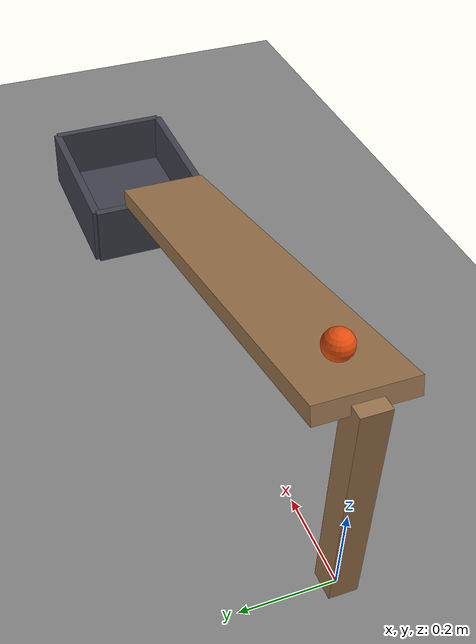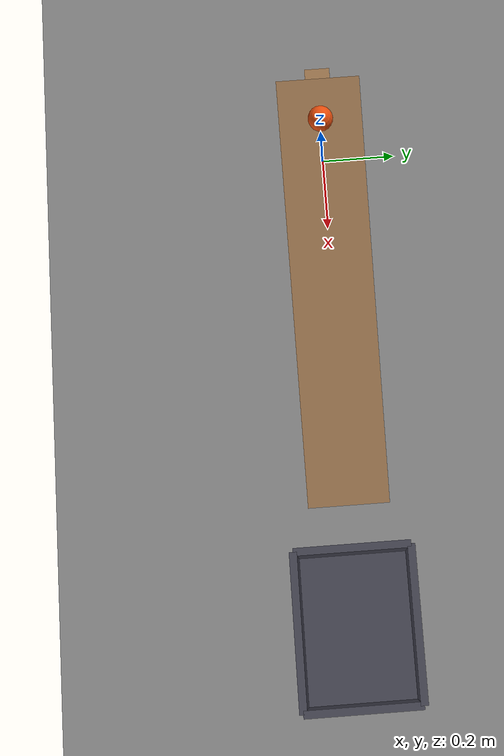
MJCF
<mujoco model="ball_rolls_down_a_ramp_into_a_cup">
  <compiler angle="radian"/>
  <option timestep="0.002"/>
  <worldbody>
    <geom name="floor" type="plane" size="8 8 0.1" friction="0.8 0.005 0.002"/>
    <body name="ramp">
      <geom name="ramp_deck" type="box" pos="0.5 0 0.375" size="0.515388 0.1 0.02" euler="0 0.244979 0" friction="0.9 0.005 0.002" rgba="0.6 0.45 0.3 1"/>
      <geom name="ramp_leg" type="box" pos="0 0 0.25" size="0.03 0.03 0.25" friction="0.9 0.005 0.002" rgba="0.6 0.45 0.3 1"/>
    </body>
    <body name="cup">
      <geom name="cup_base" type="box" pos="1.3 0 0.01" size="0.2 0.15 0.01" friction="0.9 0.01 0.004" solref="0.01 1" rgba="0.25 0.25 0.3 1"/>
      <geom name="cup_near_wall" type="box" pos="1.1 0 0.075" size="0.01 0.15 0.075" friction="0.9 0.01 0.004" solref="0.01 1" rgba="0.25 0.25 0.3 1"/>
      <geom name="cup_far_wall" type="box" pos="1.5 0 0.075" size="0.01 0.15 0.075" friction="0.9 0.01 0.004" solref="0.01 1" rgba="0.25 0.25 0.3 1"/>
      <geom name="cup_left_wall" type="box" pos="1.3 0.15 0.075" size="0.2 0.01 0.075" friction="0.9 0.01 0.004" solref="0.01 1" rgba="0.25 0.25 0.3 1"/>
      <geom name="cup_right_wall" type="box" pos="1.3 -0.15 0.075" size="0.2 0.01 0.075" friction="0.9 0.01 0.004" solref="0.01 1" rgba="0.25 0.25 0.3 1"/>
    </body>
    <body name="ball" pos="0.109141 0 0.524254">
      <freejoint/>
      <geom name="ball" type="sphere" pos="0 0 0" size="0.03" mass="0.06" condim="6" friction="0.9 0.01 0.004" solref="0.01 1" rgba="0.9 0.3 0.05 1"/>
    </body>
  </worldbody>
  <keyframe>
    <key name="start" qpos="0.109141 0 0.524254 1 0 0 0" qvel="0 0 0 0 0 0"/>
  </keyframe>
</mujoco>
